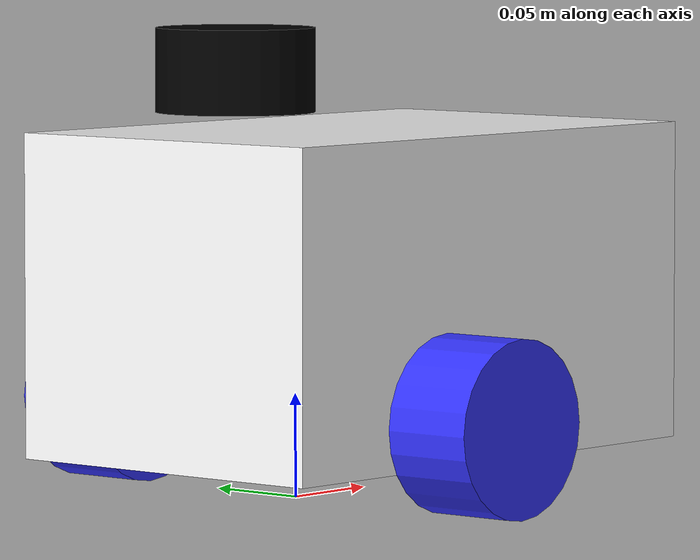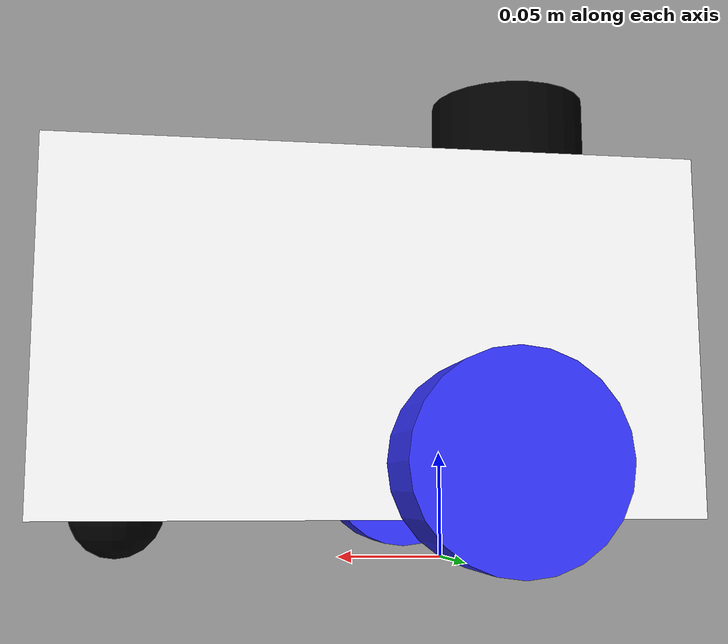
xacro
<?xml version="1.0"?>
<robot xmlns:xacro="http://www.ros.org/wiki/xacro" name="FAHIM">

    <xacro:include filename="inertial_macros.xacro"/>
    <xacro:include filename="materials.xacro"/>
    <xacro:include filename="core.xacro"/>
    <xacro:include filename="sensors.xacro"/>

</robot>

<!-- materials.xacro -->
<robot xmlns:xacro="http://www.ros.org/wiki/xacro">

    <material name="white">
        <color rgba="1 1 1 1"/>
    </material>

    <material name="orange">
        <color rgba="1 0.3 0.1 1"/>
    </material>

    <material name="blue">
        <color rgba="0.2 0.2 1 1"/>
    </material>

    <material name="black">
        <color rgba="0 0 0 1"/>
    </material>

    <material name="grey">
        <color rgba="0.5 0.5 0.5 1"/>
    </material>

    <material name="red">
        <color rgba="1 0 0 1"/>
    </material>

</robot>

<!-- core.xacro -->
<robot xmlns:xacro="http://www.ros.org/wiki/xacro">

    <!-- ================= BASE_FOOTPRINT ================= -->
    <!-- Ground-level frame, directly below base_link.
         Required by Nav2/RTAB-Map. -->
    <link name="base_footprint"/>

    <!-- ================= BASE_LINK ================= -->
    <!-- base_link placed at wheel axle height above base_footprint. -->
    <joint name="base_footprint_to_base_link" type="fixed">
        <parent link="base_footprint"/>
        <child link="base_link"/>
        <origin xyz="0 0 0.0425" rpy="0 0 0"/>
    </joint>

    <link name="base_link"/>

    <!-- ================= CHASSIS ================= -->
    <!-- Body origin shifted so wheel axle (base_link origin) is at 95mm from rear.
         Body bottom sits 20mm above ground = 2.5mm below base_link. -->
    <joint name="chassis_joint" type="fixed">
        <parent link="base_link"/>
        <child link="chassis"/>
        <origin xyz="-0.095 0 -0.0225" rpy="0 0 0"/>
    </joint>

    <link name="chassis">
        <visual>
            <origin xyz="0.139 0 0.078" rpy="0 0 0"/>
            <geometry>
                <box size="0.278 0.176 0.156"/>
            </geometry>
            <material name="white"/>
        </visual>
        <collision>
            <origin xyz="0.139 0 0.078" rpy="0 0 0"/>
            <geometry>
                <box size="0.278 0.176 0.156"/>
            </geometry>
        </collision>
        <xacro:inertial_box mass="3.0" x="0.278" y="0.176" z="0.156">
            <origin xyz="0.139 0 0.078" rpy="0 0 0"/>
        </xacro:inertial_box>
    </link>

    <!-- ================= LEFT WHEEL ================= -->
    <!-- Wheel separation 0.235 → each wheel 0.1175 from center.
         Wheel z=0 in base_link frame (axle is at base_link height). -->
    <joint name="left_wheel_joint" type="continuous">
        <parent link="base_link"/>
        <child link="left_wheel"/>
        <origin xyz="0 0.1175 0" rpy="-${pi/2} 0 0"/>
        <axis xyz="0 0 1"/>
    </joint>

    <link name="left_wheel">
        <visual>
            <geometry>
                <cylinder radius="0.0425" length="0.045"/>
            </geometry>
            <material name="blue"/>
        </visual>
        <collision>
            <geometry>
                <cylinder radius="0.0425" length="0.045"/>
            </geometry>
        </collision>
        <xacro:inertial_cylinder mass="0.15" length="0.045" radius="0.0425">
            <origin xyz="0 0 0" rpy="0 0 0"/>
        </xacro:inertial_cylinder>
    </link>

    <!-- ================= RIGHT WHEEL ================= -->
    <joint name="right_wheel_joint" type="continuous">
        <parent link="base_link"/>
        <child link="right_wheel"/>
        <origin xyz="0 -0.1175 0" rpy="${pi/2} 0 0"/>
        <axis xyz="0 0 -1"/>
    </joint>

    <link name="right_wheel">
        <visual>
            <geometry>
                <cylinder radius="0.0425" length="0.045"/>
            </geometry>
            <material name="blue"/>
        </visual>
        <collision>
            <geometry>
                <cylinder radius="0.0425" length="0.045"/>
            </geometry>
        </collision>
        <xacro:inertial_cylinder mass="0.15" length="0.045" radius="0.0425">
            <origin xyz="0 0 0" rpy="0 0 0"/>
        </xacro:inertial_cylinder>
    </link>

    <!-- ================= CASTER WHEEL ================= -->
    <joint name="caster_wheel_joint" type="fixed">
        <parent link="chassis"/>
        <child link="caster_wheel"/>
        <origin xyz="0.250 0 0.0025" rpy="0 0 0"/>
    </joint>

    <link name="caster_wheel">
        <visual>
            <geometry>
                <sphere radius="0.0225"/>
            </geometry>
            <material name="black"/>
        </visual>
        <collision>
            <geometry>
                <sphere radius="0.0225"/>
            </geometry>
        </collision>
        <xacro:inertial_sphere mass="0.05" radius="0.0225">
            <origin xyz="0 0 0" rpy="0 0 0"/>
        </xacro:inertial_sphere>
    </link>

</robot>

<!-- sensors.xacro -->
<robot xmlns:xacro="http://www.ros.org/wiki/xacro">

    <!-- ================= IMU (MPU6050) ================= -->
    <!-- CAD: (127, 88, 73.6) -> base_link: (0.032, 0, 0.054) -->
    <joint name="imu_joint" type="fixed">
        <parent link="base_link"/>
        <child link="imu_link"/>
        <origin xyz="0.032 0 0.054" rpy="0 0 0"/>
    </joint>

    <link name="imu_link">
        <visual>
            <geometry>
                <box size="0.021 0.016 0.003"/>
            </geometry>
            <material name="red"/>
        </visual>
        <collision>
            <geometry>
                <box size="0.021 0.016 0.003"/>
            </geometry>
        </collision>
        <xacro:inertial_box mass="0.005" x="0.021" y="0.016" z="0.003">
            <origin xyz="0 0 0" rpy="0 0 0"/>
        </xacro:inertial_box>
    </link>

    <!-- ================= LIDAR (RPLidar A2 M12) ================= -->
    <joint name="lidar_joint" type="fixed">
        <parent link="base_link"/>
        <child link="laser_frame"/>
        <origin xyz="-0.036 0.006 0.164" rpy="0 0 ${pi}"/>
    </joint>

    <link name="laser_frame">
        <visual>
            <geometry>
                <cylinder radius="0.038" length="0.040"/>
            </geometry>
            <material name="black"/>
        </visual>
        <collision>
            <geometry>
                <cylinder radius="0.038" length="0.040"/>
            </geometry>
        </collision>
        <xacro:inertial_cylinder mass="0.170" length="0.040" radius="0.038">
            <origin xyz="0 0 0" rpy="0 0 0"/>
        </xacro:inertial_cylinder>
    </link>

    <!-- ================= REALSENSE D435i ================= -->
    <!-- camera_link is the mechanical mount (bolt-pattern centre). -->
    <joint name="camera_joint" type="fixed">
        <parent link="base_link"/>
        <child link="camera_link"/>
        <origin xyz="0.157 0 0.105" rpy="0 0 0"/>
    </joint>

    <link name="camera_link">
        <visual>
            <geometry>
                <box size="0.025 0.090 0.025"/>
            </geometry>
            <material name="grey"/>
        </visual>
        <collision>
            <geometry>
                <box size="0.025 0.090 0.025"/>
            </geometry>
        </collision>
        <xacro:inertial_box mass="0.072" x="0.025" y="0.090" z="0.025">
            <origin xyz="0 0 0" rpy="0 0 0"/>
        </xacro:inertial_box>
    </link>

    <!-- Depth sensor body frame — coincident with camera_link on the D435i -->
    <joint name="camera_depth_joint" type="fixed">
        <parent link="camera_link"/>
        <child link="camera_depth_frame"/>
        <origin xyz="0 0 0" rpy="0 0 0"/>
    </joint>
    <link name="camera_depth_frame"/>

    <!-- Depth optical frame — REP-103 convention (Z forward, X right, Y down) -->
    <joint name="camera_depth_optical_joint" type="fixed">
        <parent link="camera_depth_frame"/>
        <child link="camera_depth_optical_frame"/>
        <origin xyz="0 0 0" rpy="${-pi/2} 0 ${-pi/2}"/>
    </joint>
    <link name="camera_depth_optical_frame"/>

    <!-- Color (RGB) frame — 15mm to the right of depth on D435i. -->
    <joint name="camera_color_joint" type="fixed">
        <parent link="camera_link"/>
        <child link="camera_color_frame"/>
        <origin xyz="0 -0.015 0" rpy="0 0 0"/>
    </joint>
    <link name="camera_color_frame"/>

    <joint name="camera_color_optical_joint" type="fixed">
        <parent link="camera_color_frame"/>
        <child link="camera_color_optical_frame"/>
        <origin xyz="0 0 0" rpy="${-pi/2} 0 ${-pi/2}"/>
    </joint>
    <link name="camera_color_optical_frame"/>

    <!-- ================= REALSENSE D435i IMU frames ================= -->
    <joint name="camera_gyro_joint" type="fixed">
        <parent link="camera_link"/>
        <child link="camera_gyro_frame"/>
        <origin xyz="-0.00552 0.00552 0.000" rpy="0 0 0"/>
    </joint>
    <link name="camera_gyro_frame"/>

    <joint name="camera_gyro_optical_joint" type="fixed">
        <parent link="camera_gyro_frame"/>
        <child link="camera_gyro_optical_frame"/>
        <origin xyz="0 0 0" rpy="${-pi/2} 0 ${-pi/2}"/>
    </joint>
    <link name="camera_gyro_optical_frame"/>

</robot>
